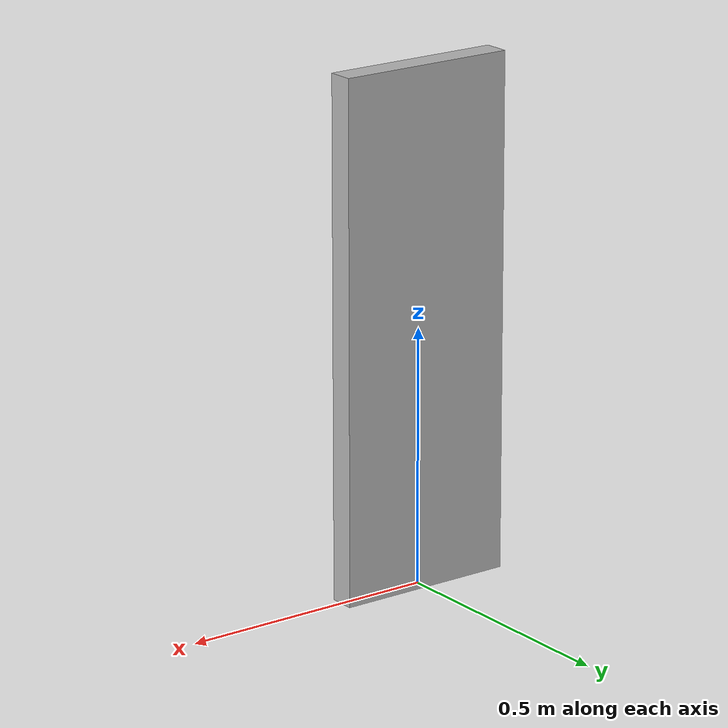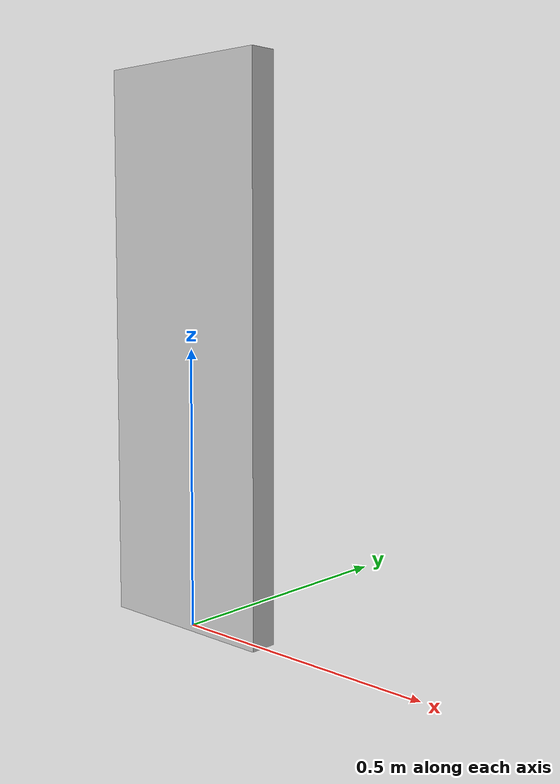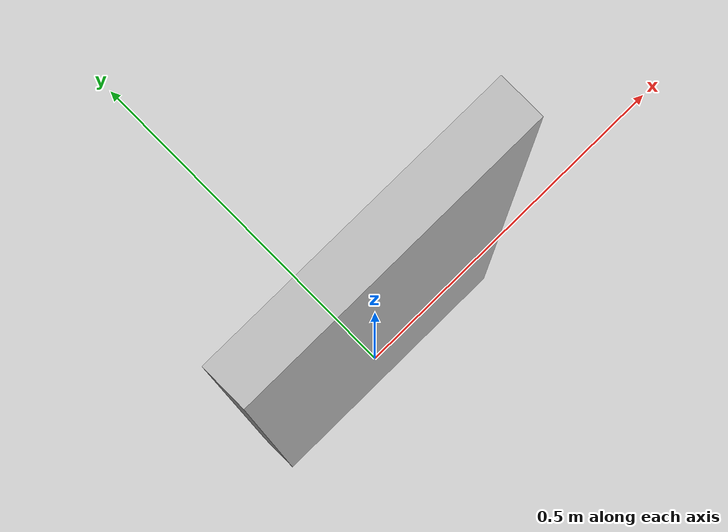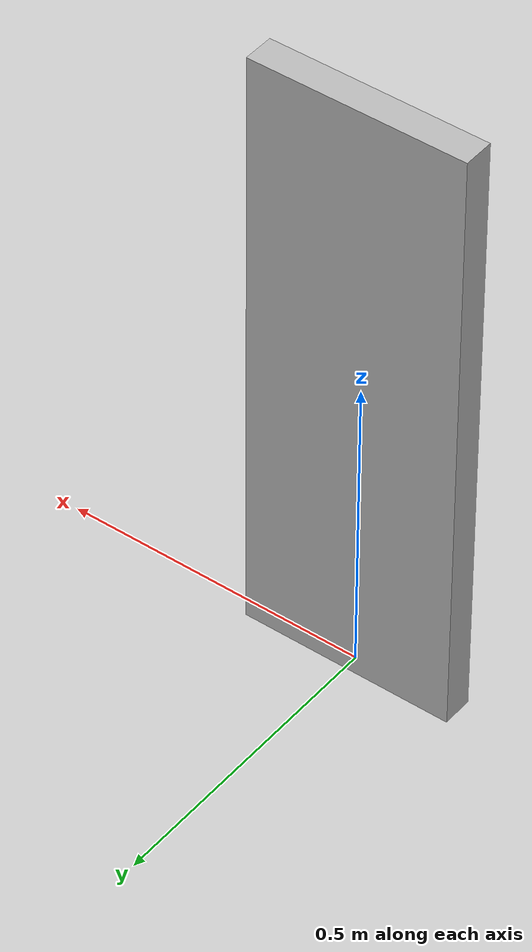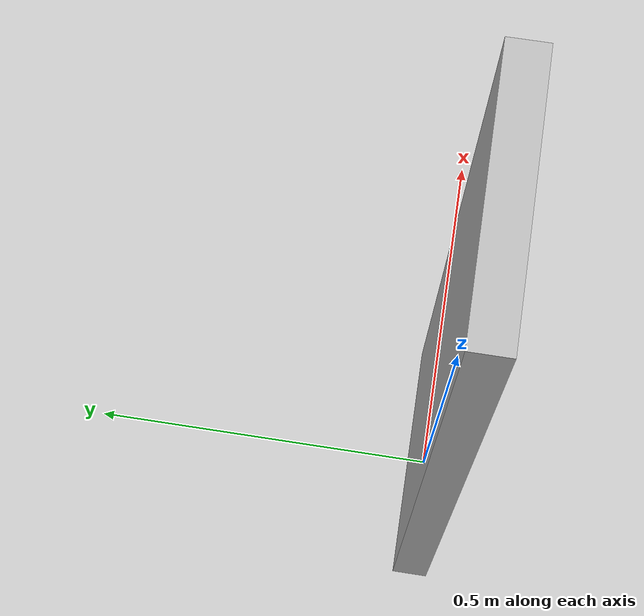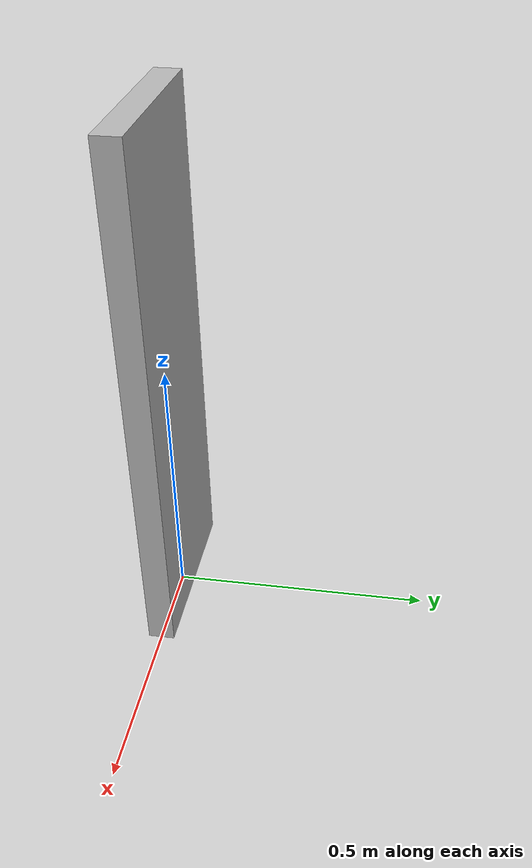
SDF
<?xml version="1.0" ?>
<sdf version="1.6">
  <model name="person_child_1">
    <static>true</static>
    <link name="link">
      <gravity>false</gravity>
      <pose>0 0 0.5 0 0 0</pose>
      <visual name="visual">
        <geometry>
          <box><size>0.35 0.05 1.0</size></box>
        </geometry>
        <material>
          <script>
            <uri>model://person_child_1/materials/scripts</uri>
            <uri>model://person_child_1/materials/textures</uri>
            <name>PersonChild1/Diffuse</name>
          </script>
        </material>
      </visual>
    </link>
  </model>
</sdf>
